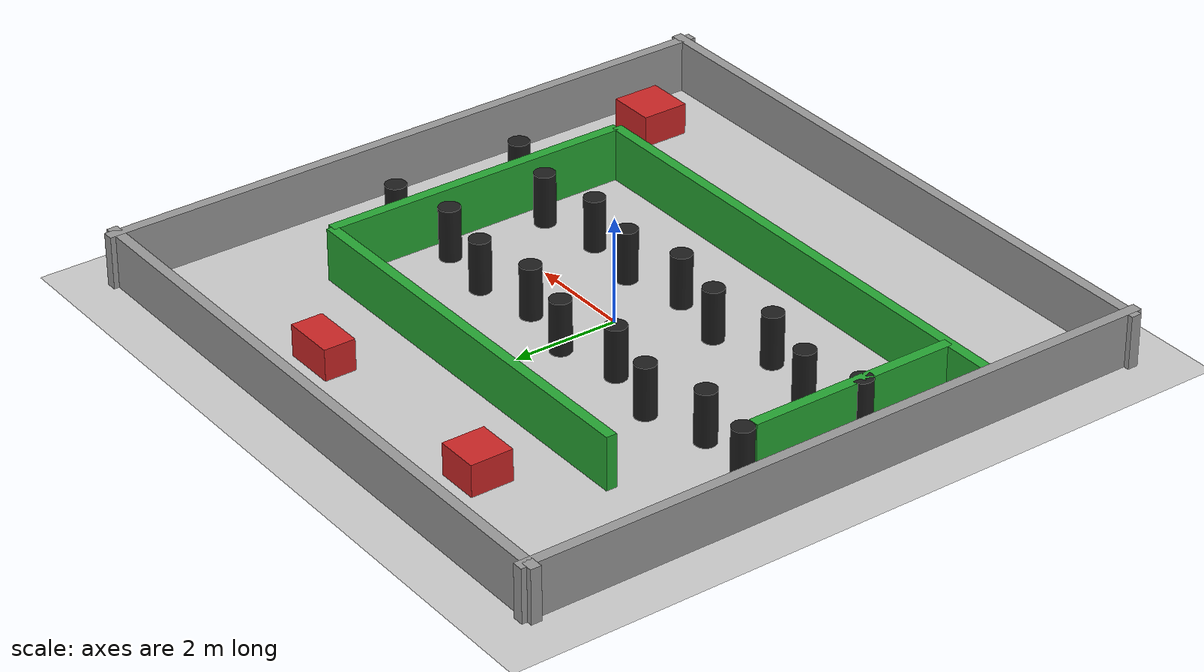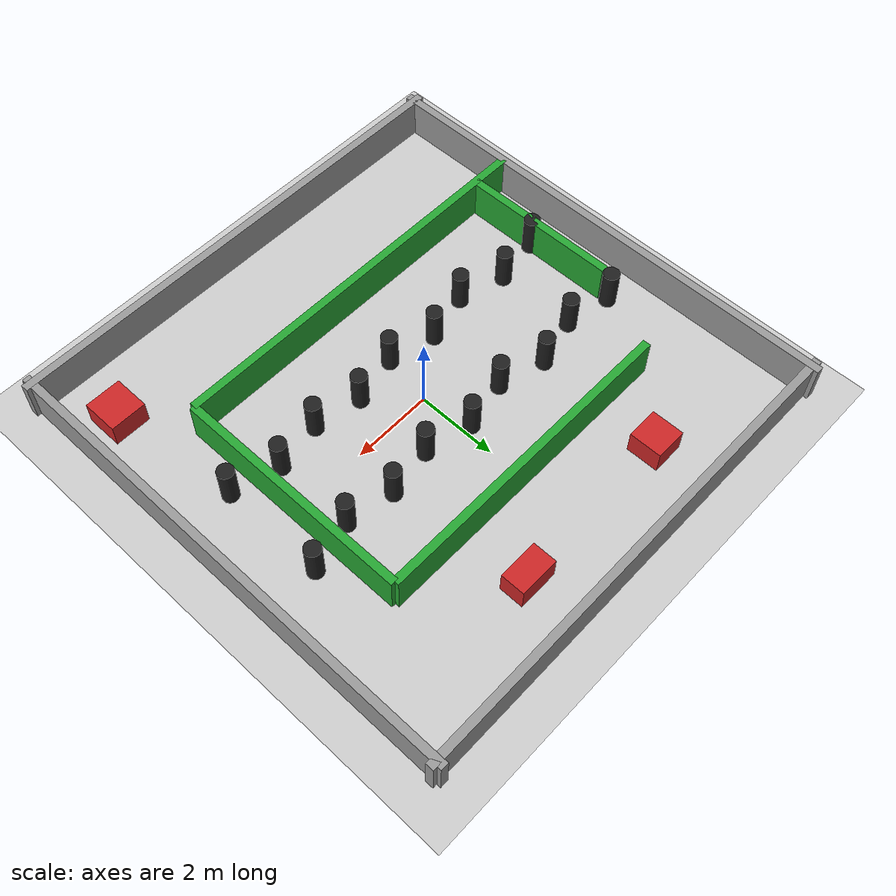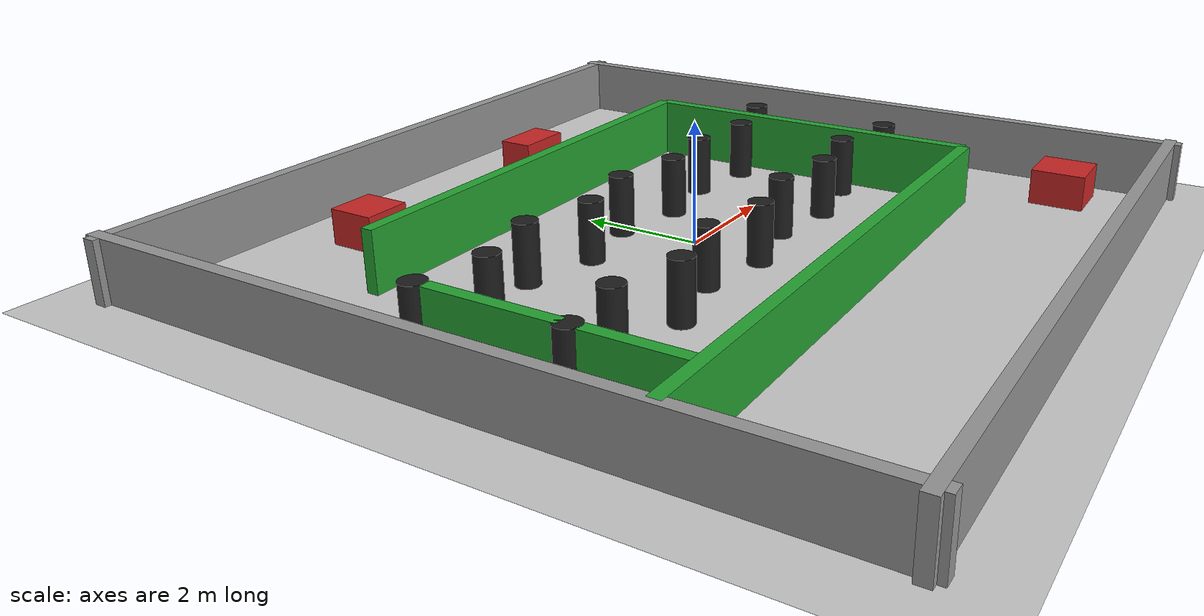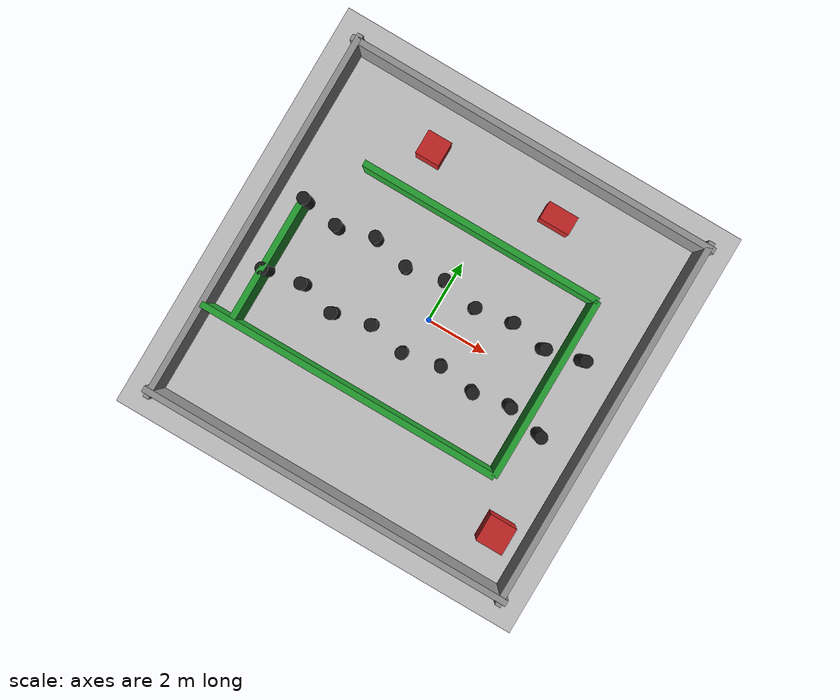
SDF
<?xml version="1.0" ?>
<sdf version="1.5">
    <!-- 12m x 12m navigation terrain: pillar alley + corner obstacles. -->
    <world name="navigation_terrain">

        <physics type="ode">
            <max_step_size>0.0005</max_step_size>
            <real_time_factor>1</real_time_factor>
            <real_time_update_rate>2000</real_time_update_rate>
            <gravity>0 0 -9.81</gravity>
            <ode>
                <solver>
                    <type>quick</type>
                    <iters>50</iters>
                    <sor>1.3</sor>
                </solver>
                <constraints>
                    <cfm>0.0</cfm>
                    <erp>0.2</erp>
                    <contact_max_correcting_vel>10.0</contact_max_correcting_vel>
                    <contact_surface_layer>0.001</contact_surface_layer>
                </constraints>
            </ode>
        </physics>

        <scene>
            <sky>
                <clouds>
                    <speed>12</speed>
                </clouds>
            </sky>
        </scene>

        <!-- A global light source -->
        <include>
            <uri>model://sun</uri>
        </include>

        <!-- A ground plane -->
        <include>
            <uri>model://ground_plane</uri>
        </include>

        <model name="static_environment">
            <static>true</static>

            <!-- Outer boundary (12m x 12m) -->
            <link name="wall_outer_x_pos">
                <pose>6.0 0.0 0.5 0 0 0</pose>
                <collision name="col"><geometry><box><size>0.20 12.40 1.00</size></box></geometry></collision>
                <visual name="vis"><geometry><box><size>0.20 12.40 1.00</size></box></geometry><material><script><uri>file://media/materials/scripts/gazebo.material</uri><name>Gazebo/Grey</name></script></material></visual>
            </link>
            <link name="wall_outer_x_neg">
                <pose>-6.0 0.0 0.5 0 0 0</pose>
                <collision name="col"><geometry><box><size>0.20 12.40 1.00</size></box></geometry></collision>
                <visual name="vis"><geometry><box><size>0.20 12.40 1.00</size></box></geometry><material><script><uri>file://media/materials/scripts/gazebo.material</uri><name>Gazebo/Grey</name></script></material></visual>
            </link>
            <link name="wall_outer_y_pos">
                <pose>0.0 6.0 0.5 0 0 0</pose>
                <collision name="col"><geometry><box><size>12.40 0.20 1.00</size></box></geometry></collision>
                <visual name="vis"><geometry><box><size>12.40 0.20 1.00</size></box></geometry><material><script><uri>file://media/materials/scripts/gazebo.material</uri><name>Gazebo/Grey</name></script></material></visual>
            </link>
            <link name="wall_outer_y_neg">
                <pose>0.0 -6.0 0.5 0 0 0</pose>
                <collision name="col"><geometry><box><size>12.40 0.20 1.00</size></box></geometry></collision>
                <visual name="vis"><geometry><box><size>12.40 0.20 1.00</size></box></geometry><material><script><uri>file://media/materials/scripts/gazebo.material</uri><name>Gazebo/Grey</name></script></material></visual>
            </link>

            <!-- Pillar alley: two rows of cylinders forming a corridor. -->
            <!-- Pillars: radius 0.20m, height 1.00m -->
            <link name="pillar_01">
                <pose>-5.0 -1.2 0.5 0 0 0</pose>
                <collision name="col"><geometry><cylinder><radius>0.20</radius><length>1.00</length></cylinder></geometry></collision>
                <visual name="vis"><geometry><cylinder><radius>0.20</radius><length>1.00</length></cylinder></geometry><material><script><uri>file://media/materials/scripts/gazebo.material</uri><name>Gazebo/Black</name></script></material></visual>
            </link>
            <link name="pillar_02">
                <pose>-5.0 1.2 0.5 0 0 0</pose>
                <collision name="col"><geometry><cylinder><radius>0.20</radius><length>1.00</length></cylinder></geometry></collision>
                <visual name="vis"><geometry><cylinder><radius>0.20</radius><length>1.00</length></cylinder></geometry><material><script><uri>file://media/materials/scripts/gazebo.material</uri><name>Gazebo/Black</name></script></material></visual>
            </link>
            <link name="pillar_03">
                <pose>-3.8 -1.0 0.5 0 0 0</pose>
                <collision name="col"><geometry><cylinder><radius>0.20</radius><length>1.00</length></cylinder></geometry></collision>
                <visual name="vis"><geometry><cylinder><radius>0.20</radius><length>1.00</length></cylinder></geometry><material><script><uri>file://media/materials/scripts/gazebo.material</uri><name>Gazebo/Black</name></script></material></visual>
            </link>
            <link name="pillar_04">
                <pose>-3.8 1.0 0.5 0 0 0</pose>
                <collision name="col"><geometry><cylinder><radius>0.20</radius><length>1.00</length></cylinder></geometry></collision>
                <visual name="vis"><geometry><cylinder><radius>0.20</radius><length>1.00</length></cylinder></geometry><material><script><uri>file://media/materials/scripts/gazebo.material</uri><name>Gazebo/Black</name></script></material></visual>
            </link>
            <link name="pillar_05">
                <pose>-2.6 -1.3 0.5 0 0 0</pose>
                <collision name="col"><geometry><cylinder><radius>0.20</radius><length>1.00</length></cylinder></geometry></collision>
                <visual name="vis"><geometry><cylinder><radius>0.20</radius><length>1.00</length></cylinder></geometry><material><script><uri>file://media/materials/scripts/gazebo.material</uri><name>Gazebo/Black</name></script></material></visual>
            </link>
            <link name="pillar_06">
                <pose>-2.6 1.3 0.5 0 0 0</pose>
                <collision name="col"><geometry><cylinder><radius>0.20</radius><length>1.00</length></cylinder></geometry></collision>
                <visual name="vis"><geometry><cylinder><radius>0.20</radius><length>1.00</length></cylinder></geometry><material><script><uri>file://media/materials/scripts/gazebo.material</uri><name>Gazebo/Black</name></script></material></visual>
            </link>
            <link name="pillar_07">
                <pose>-1.4 -1.0 0.5 0 0 0</pose>
                <collision name="col"><geometry><cylinder><radius>0.20</radius><length>1.00</length></cylinder></geometry></collision>
                <visual name="vis"><geometry><cylinder><radius>0.20</radius><length>1.00</length></cylinder></geometry><material><script><uri>file://media/materials/scripts/gazebo.material</uri><name>Gazebo/Black</name></script></material></visual>
            </link>
            <link name="pillar_08">
                <pose>-1.4 1.0 0.5 0 0 0</pose>
                <collision name="col"><geometry><cylinder><radius>0.20</radius><length>1.00</length></cylinder></geometry></collision>
                <visual name="vis"><geometry><cylinder><radius>0.20</radius><length>1.00</length></cylinder></geometry><material><script><uri>file://media/materials/scripts/gazebo.material</uri><name>Gazebo/Black</name></script></material></visual>
            </link>
            <link name="pillar_09">
                <pose>-0.2 -1.25 0.5 0 0 0</pose>
                <collision name="col"><geometry><cylinder><radius>0.20</radius><length>1.00</length></cylinder></geometry></collision>
                <visual name="vis"><geometry><cylinder><radius>0.20</radius><length>1.00</length></cylinder></geometry><material><script><uri>file://media/materials/scripts/gazebo.material</uri><name>Gazebo/Black</name></script></material></visual>
            </link>
            <link name="pillar_10">
                <pose>-0.2 1.25 0.5 0 0 0</pose>
                <collision name="col"><geometry><cylinder><radius>0.20</radius><length>1.00</length></cylinder></geometry></collision>
                <visual name="vis"><geometry><cylinder><radius>0.20</radius><length>1.00</length></cylinder></geometry><material><script><uri>file://media/materials/scripts/gazebo.material</uri><name>Gazebo/Black</name></script></material></visual>
            </link>
            <link name="pillar_11">
                <pose>1.0 -1.0 0.5 0 0 0</pose>
                <collision name="col"><geometry><cylinder><radius>0.20</radius><length>1.00</length></cylinder></geometry></collision>
                <visual name="vis"><geometry><cylinder><radius>0.20</radius><length>1.00</length></cylinder></geometry><material><script><uri>file://media/materials/scripts/gazebo.material</uri><name>Gazebo/Black</name></script></material></visual>
            </link>
            <link name="pillar_12">
                <pose>1.0 1.0 0.5 0 0 0</pose>
                <collision name="col"><geometry><cylinder><radius>0.20</radius><length>1.00</length></cylinder></geometry></collision>
                <visual name="vis"><geometry><cylinder><radius>0.20</radius><length>1.00</length></cylinder></geometry><material><script><uri>file://media/materials/scripts/gazebo.material</uri><name>Gazebo/Black</name></script></material></visual>
            </link>
            <link name="pillar_13">
                <pose>2.2 -1.2 0.5 0 0 0</pose>
                <collision name="col"><geometry><cylinder><radius>0.20</radius><length>1.00</length></cylinder></geometry></collision>
                <visual name="vis"><geometry><cylinder><radius>0.20</radius><length>1.00</length></cylinder></geometry><material><script><uri>file://media/materials/scripts/gazebo.material</uri><name>Gazebo/Black</name></script></material></visual>
            </link>
            <link name="pillar_14">
                <pose>2.2 1.2 0.5 0 0 0</pose>
                <collision name="col"><geometry><cylinder><radius>0.20</radius><length>1.00</length></cylinder></geometry></collision>
                <visual name="vis"><geometry><cylinder><radius>0.20</radius><length>1.00</length></cylinder></geometry><material><script><uri>file://media/materials/scripts/gazebo.material</uri><name>Gazebo/Black</name></script></material></visual>
            </link>
            <link name="pillar_15">
                <pose>3.4 -1.0 0.5 0 0 0</pose>
                <collision name="col"><geometry><cylinder><radius>0.20</radius><length>1.00</length></cylinder></geometry></collision>
                <visual name="vis"><geometry><cylinder><radius>0.20</radius><length>1.00</length></cylinder></geometry><material><script><uri>file://media/materials/scripts/gazebo.material</uri><name>Gazebo/Black</name></script></material></visual>
            </link>
            <link name="pillar_16">
                <pose>3.4 1.0 0.5 0 0 0</pose>
                <collision name="col"><geometry><cylinder><radius>0.20</radius><length>1.00</length></cylinder></geometry></collision>
                <visual name="vis"><geometry><cylinder><radius>0.20</radius><length>1.00</length></cylinder></geometry><material><script><uri>file://media/materials/scripts/gazebo.material</uri><name>Gazebo/Black</name></script></material></visual>
            </link>
            <link name="pillar_17">
                <pose>4.6 -1.3 0.5 0 0 0</pose>
                <collision name="col"><geometry><cylinder><radius>0.20</radius><length>1.00</length></cylinder></geometry></collision>
                <visual name="vis"><geometry><cylinder><radius>0.20</radius><length>1.00</length></cylinder></geometry><material><script><uri>file://media/materials/scripts/gazebo.material</uri><name>Gazebo/Black</name></script></material></visual>
            </link>
            <link name="pillar_18">
                <pose>4.6 1.3 0.5 0 0 0</pose>
                <collision name="col"><geometry><cylinder><radius>0.20</radius><length>1.00</length></cylinder></geometry></collision>
                <visual name="vis"><geometry><cylinder><radius>0.20</radius><length>1.00</length></cylinder></geometry><material><script><uri>file://media/materials/scripts/gazebo.material</uri><name>Gazebo/Black</name></script></material></visual>
            </link>

            <!-- Corner obstacles: two L-shaped corridors built from box walls. -->
            <link name="corner_wall_1">
                <pose>0.0 3.0 0.5 0 0 0</pose>
                <collision name="col"><geometry><box><size>8.00 0.20 1.00</size></box></geometry></collision>
                <visual name="vis"><geometry><box><size>8.00 0.20 1.00</size></box></geometry><material><script><uri>file://media/materials/scripts/gazebo.material</uri><name>Gazebo/Green</name></script></material></visual>
            </link>
            <link name="corner_wall_2">
                <pose>4.0 0.0 0.5 0 0 0</pose>
                <collision name="col"><geometry><box><size>0.20 6.00 1.00</size></box></geometry></collision>
                <visual name="vis"><geometry><box><size>0.20 6.00 1.00</size></box></geometry><material><script><uri>file://media/materials/scripts/gazebo.material</uri><name>Gazebo/Green</name></script></material></visual>
            </link>
            <link name="corner_wall_3">
                <pose>-1.0 -3.0 0.5 0 0 0</pose>
                <collision name="col"><geometry><box><size>10.00 0.20 1.00</size></box></geometry></collision>
                <visual name="vis"><geometry><box><size>10.00 0.20 1.00</size></box></geometry><material><script><uri>file://media/materials/scripts/gazebo.material</uri><name>Gazebo/Green</name></script></material></visual>
            </link>
            <link name="corner_wall_4">
                <pose>-5.0 -1.0 0.5 0 0 0</pose>
                <collision name="col"><geometry><box><size>0.20 4.00 1.00</size></box></geometry></collision>
                <visual name="vis"><geometry><box><size>0.20 4.00 1.00</size></box></geometry><material><script><uri>file://media/materials/scripts/gazebo.material</uri><name>Gazebo/Green</name></script></material></visual>
            </link>

            <!-- A few "random" standalone blocks -->
            <link name="block_1">
                <pose>-2.5 4.5 0.3 0 0 0</pose>
                <collision name="col"><geometry><box><size>0.80 0.80 0.60</size></box></geometry></collision>
                <visual name="vis"><geometry><box><size>0.80 0.80 0.60</size></box></geometry><material><script><uri>file://media/materials/scripts/gazebo.material</uri><name>Gazebo/Red</name></script></material></visual>
            </link>
            <link name="block_2">
                <pose>1.8 4.6 0.3 0 0 0</pose>
                <collision name="col"><geometry><box><size>1.00 0.60 0.60</size></box></geometry></collision>
                <visual name="vis"><geometry><box><size>1.00 0.60 0.60</size></box></geometry><material><script><uri>file://media/materials/scripts/gazebo.material</uri><name>Gazebo/Red</name></script></material></visual>
            </link>
            <link name="block_3">
                <pose>5.0 -4.5 0.3 0 0 0</pose>
                <collision name="col"><geometry><box><size>0.90 0.90 0.60</size></box></geometry></collision>
                <visual name="vis"><geometry><box><size>0.90 0.90 0.60</size></box></geometry><material><script><uri>file://media/materials/scripts/gazebo.material</uri><name>Gazebo/Red</name></script></material></visual>
            </link>
        </model>
    </world>
</sdf>
